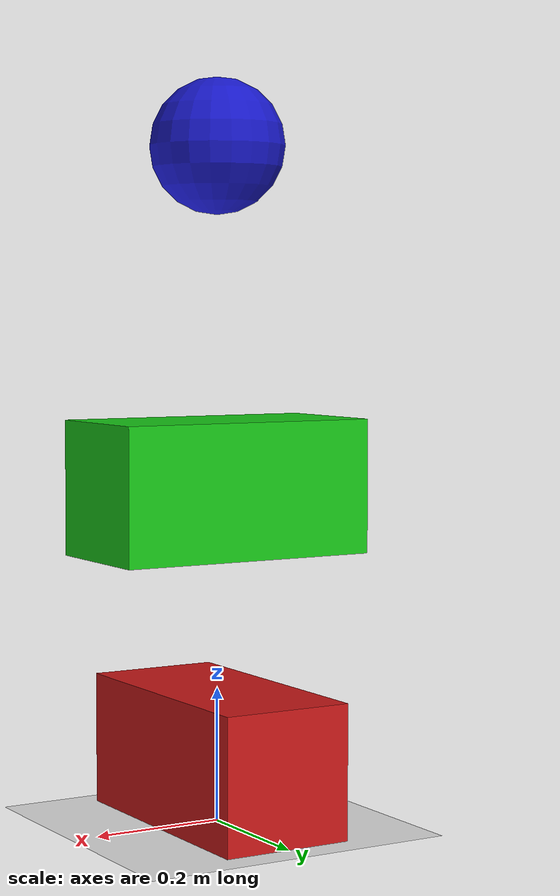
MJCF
<mujoco model="plane_and_cube">
    <compiler angle="radian" />
    <option timestep="0.01" gravity="0 0 0" />

    <!-- The world body -->
    <worldbody>
        <!-- Light source -->
        <light name="main_light" pos="0 0 1" dir="0 0 -1" diffuse="1 1 1" specular="0.1 0.1 0.1" />
        <!-- World frame -->
        <frame name="world_frame" pos="0 0 0" euler="0 0 0" />we

        <!-- The ground plane -->
        <geom name="ground" type="plane" size="5 5 0.1" rgba="0.9 0.9 0.9 1" />

        <!-- The cube -->
        <body name="cube" pos="0 0 0.1">
            <geom name="cube_geom" type="box" size="0.1 0.2 0.1" rgba="0.8 0.1 0.1 1" />
            <joint name="cube_free" type="free" />
        </body>

        <!-- The cube2 -->
        <body name="cube_green" pos="0 0 0.5" euler="0 0 0">
            <geom name="cube_geom_green" type="box" size="0.2 0.1 0.1" rgba="0.1 0.8 0.1 1" />
            <joint name="cube_free_Green" type="free" />
        </body>

        <!-- The Sphere -->
          <body name="sphere" pos="0 0 1" >
            <geom name="sphere_geom" type="sphere" size="0.1" rgba="0.1 0.1 0.8 1" />
            <joint name="sphere_free_Green" type="free" />
        </body>

    </worldbody>

    <!-- Actuator and sensor definitions (optional) -->
    <actuator>
        <!-- Define any actuators here -->
    </actuator>

    <sensor>
        <!-- Define any sensors here -->
    </sensor>
</mujoco>
